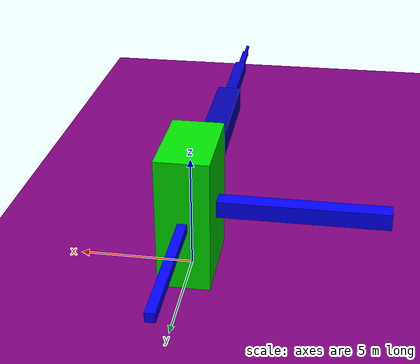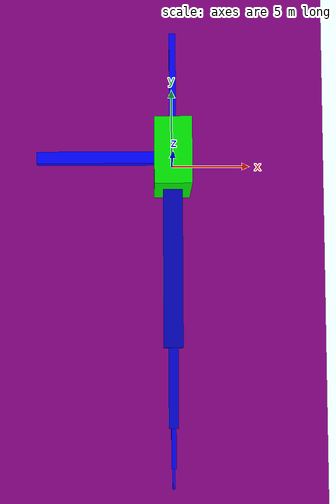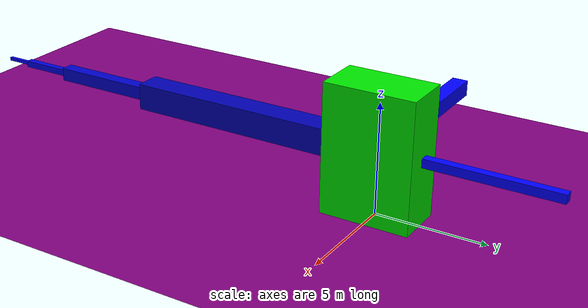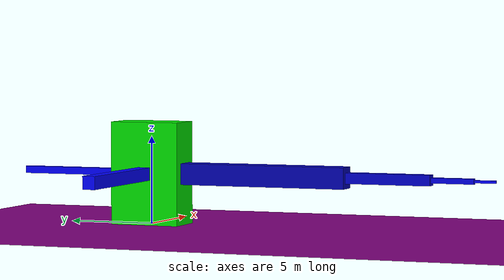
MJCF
<mujoco model="unnamed_model">
  <option timestep="0.01" integrator="RK4">
    <flag energy="enable" sensornoise="enable"/>
  </option>
  <default>
    <default class="/"/>
  </default>
  <worldbody>
    <light name="world_light" class="/" pos="0 0 10" dir="0 0 -1" diffuse="0.5 0.5 0.5"/>
    <geom name="ground_plane" class="/" type="plane" size="0 0 1" rgba="0.5 0 0.5 1"/>
    <body name="core_body" pos="0 0 2.9215355276642958">
      <geom name="core_geom" class="/" type="box" size="1.1352722071749819 2.0236380482640213 2.9215355276642958" rgba="0 0.90000000000000002 0 1"/>
      <joint name="first" class="/" type="free"/>
      <body name="front_limb_7" pos="0 -6.8804079705163383 0">
        <joint name="front_shoulder_7" class="/" type="ball" pos="0 4.8567699222523171 0"/>
        <geom name="front_arm_7" class="/" type="box" size="0.59869590531705974 4.8567699222523171 0.59869590531705974" rgba="0 0 0.69999999999999996 1" mass="1"/>
        <body name="front_limb_8" pos="0 -7.2851548833784756 0">
          <joint name="front_shoulder_8" class="/" type="ball" pos="0 2.4283849611261585 0"/>
          <geom name="front_arm_8" class="/" type="box" size="0.29934795265852987 2.4283849611261585 0.29934795265852987" rgba="0 0 0.80000000000000004 1" mass="1"/>
          <body name="front_limb_9" pos="0 -3.6425774416892378 0">
            <joint name="front_shoulder_9" class="/" type="ball" pos="0 1.2141924805630793 0"/>
            <geom name="front_arm_9" class="/" type="box" size="0.14967397632926494 1.2141924805630793 0.14967397632926494" rgba="0 0 0.90000000000000002 1" mass="1"/>
            <body name="front_limb_10" pos="0 -1.8212887208446189 0">
              <joint name="front_shoulder_10" class="/" type="ball" pos="0 0.60709624028153963 0"/>
              <geom name="front_arm_10" class="/" type="box" size="0.074836988164632468 0.60709624028153963 0.074836988164632468" rgba="0 0 1 1" mass="1"/>
            </body>
          </body>
        </body>
      </body>
      <body name="left_limb_11" pos="-4.7711384904986591 0 0">
        <joint name="left_shoulder_11" class="/" type="ball" pos="3.6358662833236775 0 0"/>
        <geom name="left_arm_11" class="/" type="box" size="3.6358662833236775 0.36456195830418808 0.36456195830418808" rgba="0 0 1 1" mass="1"/>
      </body>
      <body name="back_limb_12" pos="0 4.9561547912572887 0">
        <joint name="back_shoulder_12" class="/" type="ball" pos="0 -2.9325167429932679 0"/>
        <geom name="back_arm_12" class="/" type="box" size="0.20000000000000001 2.9325167429932679 0.20000000000000001" rgba="0 0 1 1" mass="1"/>
      </body>
    </body>
  </worldbody>
  <actuator>
    <position name="frontxy_3" class="/" group="0" gear="0 0 1" joint="front_shoulder_7" kp="5"/>
    <position name="frontxz_3" class="/" group="0" gear="0 1 0" joint="front_shoulder_7" kp="5"/>
    <position name="frontyz_3" class="/" group="0" gear="1 0 0" joint="front_shoulder_7" kp="5"/>
    <position name="frontxy_2" class="/" group="0" gear="0 0 1" joint="front_shoulder_8" kp="5"/>
    <position name="frontxz_2" class="/" group="0" gear="0 1 0" joint="front_shoulder_8" kp="5"/>
    <position name="frontyz_2" class="/" group="0" gear="1 0 0" joint="front_shoulder_8" kp="5"/>
    <position name="frontxy_1" class="/" group="0" gear="0 0 1" joint="front_shoulder_9" kp="5"/>
    <position name="frontxz_1" class="/" group="0" gear="0 1 0" joint="front_shoulder_9" kp="5"/>
    <position name="frontyz_1" class="/" group="0" gear="1 0 0" joint="front_shoulder_9" kp="5"/>
    <position name="frontxy_0" class="/" group="0" gear="0 0 1" joint="front_shoulder_10" kp="5"/>
    <position name="frontxz_0" class="/" group="0" gear="0 1 0" joint="front_shoulder_10" kp="5"/>
    <position name="frontyz_0" class="/" group="0" gear="1 0 0" joint="front_shoulder_10" kp="5"/>
    <position name="leftxy_0" class="/" group="3" gear="0 0 1" joint="left_shoulder_11" kp="5"/>
    <position name="leftxz_0" class="/" group="3" gear="0 1 0" joint="left_shoulder_11" kp="5"/>
    <position name="leftyz_0" class="/" group="3" gear="1 0 0" joint="left_shoulder_11" kp="5"/>
    <position name="backxy_0" class="/" group="2" gear="0 0 1" joint="back_shoulder_12" kp="5"/>
    <position name="backxz_0" class="/" group="2" gear="0 1 0" joint="back_shoulder_12" kp="5"/>
    <position name="backyz_0" class="/" group="2" gear="1 0 0" joint="back_shoulder_12" kp="5"/>
  </actuator>
</mujoco>
